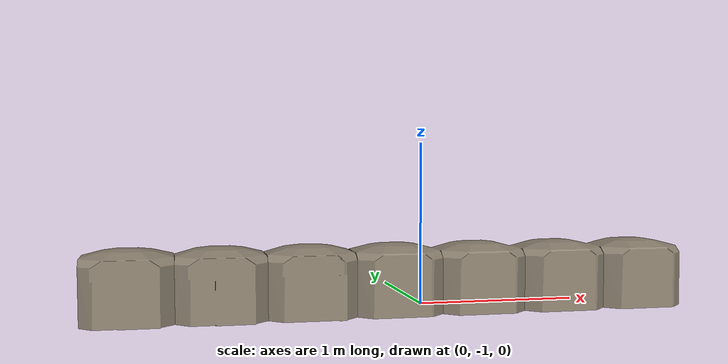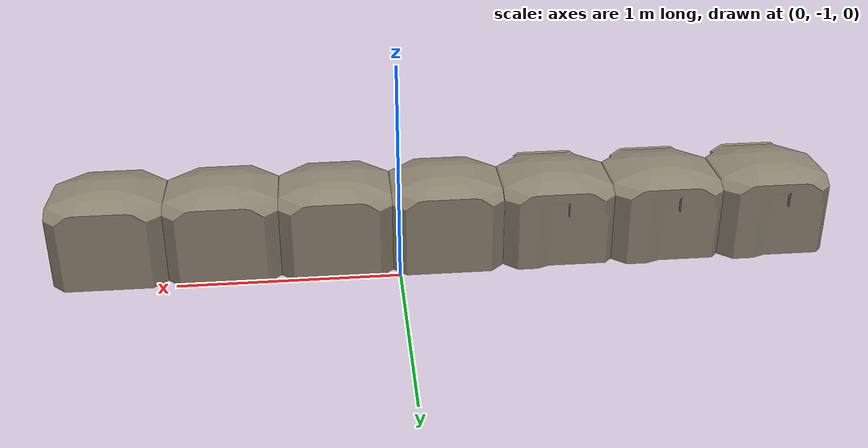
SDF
<?xml version="1.0"?>
<sdf version="1.6">
  <model name="Dock_m4">
    <static>true</static>
    <link name="base_link">
      <visual name="dock">
        <geometry>
          <mesh>
            <uri>model://dock_m4/assets/dock_m4.stl</uri>
          </mesh>
        </geometry>
        <material>
          <ambient>0.34 0.31 0.27 1</ambient>
          <!-- Red color -->
          <diffuse>0.559642 0.515643 0.446934 1</diffuse>
          <specular>0.01 0.01 0.01 1</specular>
        </material>
      </visual>
      <collision name='tine1'>
        <pose>0 0 0 0 0 0</pose>
        <geometry>
          <box>
            <size>2.02606 0.506918 0.406521</size>
          </box>
        </geometry>
      </collision>
    </link>
  </model>
</sdf>
